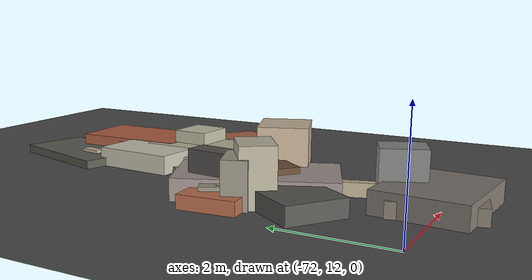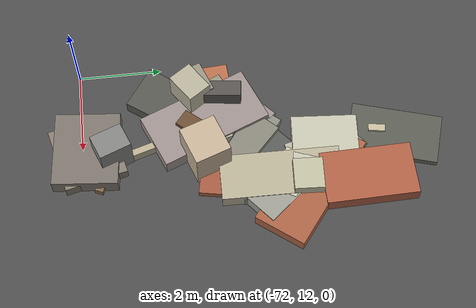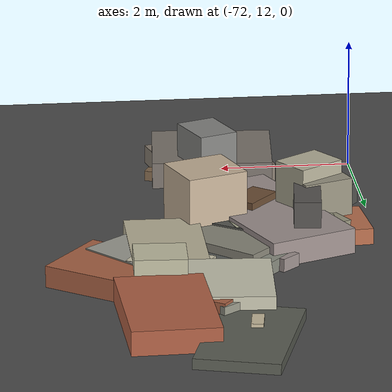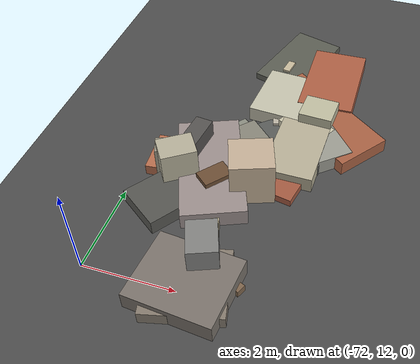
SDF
<sdf version="1.6">
 <world name="navitas_arena">
  <model name="ground_plane">
   <static>true</static>
   <link name="link">
    <collision name="collision">
     <geometry><plane><normal>0 0 1</normal><size>400 400</size></plane></geometry>
     <surface><friction><ode><mu>0.800</mu><mu2>0.800</mu2></ode></friction></surface>
    </collision>
    <visual name="visual">
     <cast_shadows>false</cast_shadows>
     <geometry><plane><normal>0 0 1</normal><size>400 400</size></plane></geometry>
     <material>
      <specular>0.04 0.04 0.04 1</specular>
      <script>
       <uri>file://media/materials/scripts/navitas_asphalt.material</uri>
       <name>Navitas/RealArenaAsphalt</name>
      </script>
     </material>
    </visual>
   </link>
  </model>
  <model name="deb_kolay_23">
   <static>true</static>
   <pose>-69.438 12.434 0.000 0 0 0</pose>
   <link name="link">
    <collision name="col_0">
     <pose>-0.264 0.296 0.466 0.000 0.000 0.378</pose>
     <geometry><box><size>0.619 0.785 0.932</size></box></geometry>
    </collision>
    <visual name="vis_0">
     <pose>-0.264 0.296 0.466 0.000 0.000 0.378</pose>
     <geometry><box><size>0.619 0.785 0.932</size></box></geometry>
     <material>
      <ambient>0.48 0.49 0.47 1</ambient>
      <diffuse>0.52 0.52 0.51 1</diffuse>
      <specular>0.05 0.05 0.045 1</specular>
     </material>
    </visual>
    <collision name="col_1">
     <pose>0.426 -0.012 0.077 0.000 0.000 -0.410</pose>
     <geometry><box><size>0.452 0.203 0.153</size></box></geometry>
    </collision>
    <visual name="vis_1">
     <pose>0.426 -0.012 0.077 0.000 0.000 -0.410</pose>
     <geometry><box><size>0.452 0.203 0.153</size></box></geometry>
     <material>
      <ambient>0.46 0.37 0.28 1</ambient>
      <diffuse>0.50 0.40 0.30 1</diffuse>
      <specular>0.05 0.05 0.045 1</specular>
     </material>
    </visual>
    <collision name="col_2">
     <pose>-0.399 -0.323 0.203 0.000 0.000 -0.088</pose>
     <geometry><box><size>1.848 1.564 0.406</size></box></geometry>
    </collision>
    <visual name="vis_2">
     <pose>-0.399 -0.323 0.203 0.000 0.000 -0.088</pose>
     <geometry><box><size>1.848 1.564 0.406</size></box></geometry>
     <material>
      <ambient>0.45 0.43 0.40 1</ambient>
      <diffuse>0.49 0.46 0.43 1</diffuse>
      <specular>0.05 0.05 0.045 1</specular>
     </material>
    </visual>
    <collision name="col_3">
     <pose>-0.157 0.520 0.126 0.000 0.000 1.872</pose>
     <geometry><box><size>2.032 0.167 0.253</size></box></geometry>
    </collision>
    <visual name="vis_3">
     <pose>-0.157 0.520 0.126 0.000 0.000 1.872</pose>
     <geometry><box><size>2.032 0.167 0.253</size></box></geometry>
     <material>
      <ambient>0.68 0.64 0.53 1</ambient>
      <diffuse>0.74 0.69 0.57 1</diffuse>
      <specular>0.05 0.05 0.045 1</specular>
     </material>
    </visual>
    <collision name="col_4">
     <pose>-0.371 -0.310 0.142 0.000 0.000 1.806</pose>
     <geometry><box><size>1.516 1.621 0.283</size></box></geometry>
    </collision>
    <visual name="vis_4">
     <pose>-0.371 -0.310 0.142 0.000 0.000 1.806</pose>
     <geometry><box><size>1.516 1.621 0.283</size></box></geometry>
     <material>
      <ambient>0.49 0.46 0.40 1</ambient>
      <diffuse>0.53 0.49 0.44 1</diffuse>
      <specular>0.05 0.05 0.045 1</specular>
     </material>
    </visual>
   </link>
  </model>
  <model name="deb_kolay_56">
   <static>true</static>
   <pose>-68.680 16.682 0.000 0 0 0</pose>
   <link name="link">
    <collision name="col_0">
     <pose>0.546 0.234 0.127 0.000 0.000 1.871</pose>
     <geometry><box><size>1.388 0.213 0.255</size></box></geometry>
    </collision>
    <visual name="vis_0">
     <pose>0.546 0.234 0.127 0.000 0.000 1.871</pose>
     <geometry><box><size>1.388 0.213 0.255</size></box></geometry>
     <material>
      <ambient>0.59 0.35 0.25 1</ambient>
      <diffuse>0.64 0.37 0.27 1</diffuse>
      <specular>0.05 0.05 0.045 1</specular>
     </material>
    </visual>
    <collision name="col_1">
     <pose>-0.047 0.199 0.178 0.000 0.000 2.626</pose>
     <geometry><box><size>1.124 0.705 0.356</size></box></geometry>
    </collision>
    <visual name="vis_1">
     <pose>-0.047 0.199 0.178 0.000 0.000 2.626</pose>
     <geometry><box><size>1.124 0.705 0.356</size></box></geometry>
     <material>
      <ambient>0.74 0.72 0.63 1</ambient>
      <diffuse>0.80 0.78 0.68 1</diffuse>
      <specular>0.05 0.05 0.045 1</specular>
     </material>
    </visual>
    <collision name="col_2">
     <pose>0.140 0.172 0.175 0.000 0.000 2.275</pose>
     <geometry><box><size>2.137 0.839 0.350</size></box></geometry>
    </collision>
    <visual name="vis_2">
     <pose>0.140 0.172 0.175 0.000 0.000 2.275</pose>
     <geometry><box><size>2.137 0.839 0.350</size></box></geometry>
     <material>
      <ambient>0.57 0.58 0.53 1</ambient>
      <diffuse>0.62 0.62 0.58 1</diffuse>
      <specular>0.05 0.05 0.045 1</specular>
     </material>
    </visual>
    <collision name="col_3">
     <pose>-0.710 -0.249 0.083 0.000 0.000 0.719</pose>
     <geometry><box><size>2.042 1.165 0.166</size></box></geometry>
    </collision>
    <visual name="vis_3">
     <pose>-0.710 -0.249 0.083 0.000 0.000 0.719</pose>
     <geometry><box><size>2.042 1.165 0.166</size></box></geometry>
     <material>
      <ambient>0.33 0.34 0.32 1</ambient>
      <diffuse>0.35 0.36 0.35 1</diffuse>
      <specular>0.05 0.05 0.045 1</specular>
     </material>
    </visual>
    <collision name="col_4">
     <pose>-0.048 -0.045 0.181 0.000 0.000 1.559</pose>
     <geometry><box><size>2.868 1.129 0.363</size></box></geometry>
    </collision>
    <visual name="vis_4">
     <pose>-0.048 -0.045 0.181 0.000 0.000 1.559</pose>
     <geometry><box><size>2.868 1.129 0.363</size></box></geometry>
     <material>
      <ambient>0.68 0.65 0.55 1</ambient>
      <diffuse>0.73 0.70 0.60 1</diffuse>
      <specular>0.05 0.05 0.045 1</specular>
     </material>
    </visual>
    <collision name="col_5">
     <pose>0.328 0.199 0.149 0.000 0.000 0.360</pose>
     <geometry><box><size>1.561 0.953 0.297</size></box></geometry>
    </collision>
    <visual name="vis_5">
     <pose>0.328 0.199 0.149 0.000 0.000 0.360</pose>
     <geometry><box><size>1.561 0.953 0.297</size></box></geometry>
     <material>
      <ambient>0.52 0.47 0.45 1</ambient>
      <diffuse>0.56 0.50 0.49 1</diffuse>
      <specular>0.05 0.05 0.045 1</specular>
     </material>
    </visual>
    <collision name="col_6">
     <pose>0.453 -0.754 0.145 0.000 0.000 1.510</pose>
     <geometry><box><size>0.419 0.168 0.290</size></box></geometry>
    </collision>
    <visual name="vis_6">
     <pose>0.453 -0.754 0.145 0.000 0.000 1.510</pose>
     <geometry><box><size>0.419 0.168 0.290</size></box></geometry>
     <material>
      <ambient>0.50 0.50 0.48 1</ambient>
      <diffuse>0.54 0.54 0.52 1</diffuse>
      <specular>0.05 0.05 0.045 1</specular>
     </material>
    </visual>
   </link>
  </model>
  <model name="deb_kolay_140">
   <static>true</static>
   <pose>-69.699 18.768 0.000 0 0 0</pose>
   <link name="link">
    <collision name="col_0">
     <pose>0.117 0.736 0.081 0.000 0.000 1.286</pose>
     <geometry><box><size>2.200 1.252 0.161</size></box></geometry>
    </collision>
    <visual name="vis_0">
     <pose>0.117 0.736 0.081 0.000 0.000 1.286</pose>
     <geometry><box><size>2.200 1.252 0.161</size></box></geometry>
     <material>
      <ambient>0.33 0.34 0.30 1</ambient>
      <diffuse>0.36 0.37 0.33 1</diffuse>
      <specular>0.05 0.05 0.045 1</specular>
     </material>
    </visual>
    <collision name="col_1">
     <pose>-0.043 0.330 0.109 0.000 0.000 1.420</pose>
     <geometry><box><size>0.409 0.177 0.217</size></box></geometry>
    </collision>
    <visual name="vis_1">
     <pose>-0.043 0.330 0.109 0.000 0.000 1.420</pose>
     <geometry><box><size>0.409 0.177 0.217</size></box></geometry>
     <material>
      <ambient>0.73 0.68 0.57 1</ambient>
      <diffuse>0.79 0.74 0.62 1</diffuse>
      <specular>0.05 0.05 0.045 1</specular>
     </material>
    </visual>
    <collision name="col_2">
     <pose>0.745 -0.051 0.163 0.000 0.000 -0.127</pose>
     <geometry><box><size>0.249 0.425 0.325</size></box></geometry>
    </collision>
    <visual name="vis_2">
     <pose>0.745 -0.051 0.163 0.000 0.000 -0.127</pose>
     <geometry><box><size>0.249 0.425 0.325</size></box></geometry>
     <material>
      <ambient>0.35 0.31 0.32 1</ambient>
      <diffuse>0.38 0.33 0.35 1</diffuse>
      <specular>0.05 0.05 0.045 1</specular>
     </material>
    </visual>
    <collision name="col_3">
     <pose>0.305 -0.470 0.161 0.000 0.000 1.300</pose>
     <geometry><box><size>0.336 0.344 0.322</size></box></geometry>
    </collision>
    <visual name="vis_3">
     <pose>0.305 -0.470 0.161 0.000 0.000 1.300</pose>
     <geometry><box><size>0.336 0.344 0.322</size></box></geometry>
     <material>
      <ambient>0.72 0.69 0.60 1</ambient>
      <diffuse>0.77 0.75 0.65 1</diffuse>
      <specular>0.05 0.05 0.045 1</specular>
     </material>
    </visual>
    <collision name="col_4">
     <pose>0.340 -0.187 0.143 0.000 0.000 2.240</pose>
     <geometry><box><size>0.244 0.340 0.286</size></box></geometry>
    </collision>
    <visual name="vis_4">
     <pose>0.340 -0.187 0.143 0.000 0.000 2.240</pose>
     <geometry><box><size>0.244 0.340 0.286</size></box></geometry>
     <material>
      <ambient>0.56 0.56 0.50 1</ambient>
      <diffuse>0.60 0.60 0.54 1</diffuse>
      <specular>0.05 0.05 0.045 1</specular>
     </material>
    </visual>
   </link>
  </model>
  <model name="deb_kolay_141">
   <static>true</static>
   <pose>-70.099 14.708 0.000 0 0 0</pose>
   <link name="link">
    <collision name="col_0">
     <pose>-0.395 0.330 0.165 0.000 0.000 3.390</pose>
     <geometry><box><size>1.571 0.800 0.331</size></box></geometry>
    </collision>
    <visual name="vis_0">
     <pose>-0.395 0.330 0.165 0.000 0.000 3.390</pose>
     <geometry><box><size>1.571 0.800 0.331</size></box></geometry>
     <material>
      <ambient>0.65 0.65 0.55 1</ambient>
      <diffuse>0.70 0.70 0.59 1</diffuse>
      <specular>0.05 0.05 0.045 1</specular>
     </material>
    </visual>
    <collision name="col_1">
     <pose>0.657 0.224 0.529 0.000 0.000 1.920</pose>
     <geometry><box><size>0.886 0.955 1.059</size></box></geometry>
    </collision>
    <visual name="vis_1">
     <pose>0.657 0.224 0.529 0.000 0.000 1.920</pose>
     <geometry><box><size>0.886 0.955 1.059</size></box></geometry>
     <material>
      <ambient>0.72 0.65 0.56 1</ambient>
      <diffuse>0.78 0.70 0.60 1</diffuse>
      <specular>0.05 0.05 0.045 1</specular>
     </material>
    </visual>
    <collision name="col_2">
     <pose>-0.084 -0.039 0.249 0.000 0.000 4.016</pose>
     <geometry><box><size>0.662 0.426 0.499</size></box></geometry>
    </collision>
    <visual name="vis_2">
     <pose>-0.084 -0.039 0.249 0.000 0.000 4.016</pose>
     <geometry><box><size>0.662 0.426 0.499</size></box></geometry>
     <material>
      <ambient>0.40 0.29 0.20 1</ambient>
      <diffuse>0.43 0.31 0.21 1</diffuse>
      <specular>0.05 0.05 0.045 1</specular>
     </material>
    </visual>
    <collision name="col_3">
     <pose>0.032 -0.107 0.134 0.000 0.000 3.089</pose>
     <geometry><box><size>0.499 0.284 0.268</size></box></geometry>
    </collision>
    <visual name="vis_3">
     <pose>0.032 -0.107 0.134 0.000 0.000 3.089</pose>
     <geometry><box><size>0.499 0.284 0.268</size></box></geometry>
     <material>
      <ambient>0.40 0.41 0.37 1</ambient>
      <diffuse>0.43 0.44 0.40 1</diffuse>
      <specular>0.05 0.05 0.045 1</specular>
     </material>
    </visual>
    <collision name="col_4">
     <pose>-0.391 0.512 0.138 0.000 0.000 3.169</pose>
     <geometry><box><size>1.601 0.193 0.276</size></box></geometry>
    </collision>
    <visual name="vis_4">
     <pose>-0.391 0.512 0.138 0.000 0.000 3.169</pose>
     <geometry><box><size>1.601 0.193 0.276</size></box></geometry>
     <material>
      <ambient>0.70 0.65 0.55 1</ambient>
      <diffuse>0.76 0.70 0.60 1</diffuse>
      <specular>0.05 0.05 0.045 1</specular>
     </material>
    </visual>
    <collision name="col_5">
     <pose>-0.021 -0.302 0.073 0.000 0.000 3.798</pose>
     <geometry><box><size>1.861 0.229 0.146</size></box></geometry>
    </collision>
    <visual name="vis_5">
     <pose>-0.021 -0.302 0.073 0.000 0.000 3.798</pose>
     <geometry><box><size>1.861 0.229 0.146</size></box></geometry>
     <material>
      <ambient>0.48 0.47 0.43 1</ambient>
      <diffuse>0.51 0.51 0.47 1</diffuse>
      <specular>0.05 0.05 0.045 1</specular>
     </material>
    </visual>
   </link>
  </model>
  <model name="deb_kolay_145">
   <static>true</static>
   <pose>-69.168 18.178 0.000 0 0 0</pose>
   <link name="link">
    <collision name="col_0">
     <pose>-0.058 -0.404 0.181 0.000 0.000 1.502</pose>
     <geometry><box><size>1.578 1.789 0.363</size></box></geometry>
    </collision>
    <visual name="vis_0">
     <pose>-0.058 -0.404 0.181 0.000 0.000 1.502</pose>
     <geometry><box><size>1.578 1.789 0.363</size></box></geometry>
     <material>
      <ambient>0.72 0.72 0.64 1</ambient>
      <diffuse>0.78 0.77 0.69 1</diffuse>
      <specular>0.05 0.05 0.045 1</specular>
     </material>
    </visual>
    <collision name="col_1">
     <pose>0.679 -0.849 0.165 0.000 0.000 2.497</pose>
     <geometry><box><size>3.029 1.300 0.329</size></box></geometry>
    </collision>
    <visual name="vis_1">
     <pose>0.679 -0.849 0.165 0.000 0.000 2.497</pose>
     <geometry><box><size>3.029 1.300 0.329</size></box></geometry>
     <material>
      <ambient>0.62 0.36 0.25 1</ambient>
      <diffuse>0.67 0.39 0.27 1</diffuse>
      <specular>0.05 0.05 0.045 1</specular>
     </material>
    </visual>
    <collision name="col_2">
     <pose>0.635 -0.920 0.302 0.000 0.000 3.089</pose>
     <geometry><box><size>0.779 0.706 0.604</size></box></geometry>
    </collision>
    <visual name="vis_2">
     <pose>0.635 -0.920 0.302 0.000 0.000 3.089</pose>
     <geometry><box><size>0.779 0.706 0.604</size></box></geometry>
     <material>
      <ambient>0.71 0.69 0.59 1</ambient>
      <diffuse>0.76 0.75 0.64 1</diffuse>
      <specular>0.05 0.05 0.045 1</specular>
     </material>
    </visual>
    <collision name="col_3">
     <pose>0.669 0.519 0.185 0.000 0.000 1.596</pose>
     <geometry><box><size>2.197 1.303 0.370</size></box></geometry>
    </collision>
    <visual name="vis_3">
     <pose>0.669 0.519 0.185 0.000 0.000 1.596</pose>
     <geometry><box><size>2.197 1.303 0.370</size></box></geometry>
     <material>
      <ambient>0.64 0.36 0.25 1</ambient>
      <diffuse>0.69 0.38 0.27 1</diffuse>
      <specular>0.05 0.05 0.045 1</specular>
     </material>
    </visual>
   </link>
  </model>
  <model name="deb_kolay_164">
   <static>true</static>
   <pose>-70.696 15.144 0.000 0 0 0</pose>
   <link name="link">
    <collision name="col_0">
     <pose>-0.423 0.059 0.124 0.000 0.000 0.080</pose>
     <geometry><box><size>1.458 1.016 0.248</size></box></geometry>
    </collision>
    <visual name="vis_0">
     <pose>-0.423 0.059 0.124 0.000 0.000 0.080</pose>
     <geometry><box><size>1.458 1.016 0.248</size></box></geometry>
     <material>
      <ambient>0.68 0.41 0.29 1</ambient>
      <diffuse>0.73 0.44 0.31 1</diffuse>
      <specular>0.05 0.05 0.045 1</specular>
     </material>
    </visual>
    <collision name="col_1">
     <pose>0.312 -0.161 0.195 0.000 0.000 1.966</pose>
     <geometry><box><size>2.775 1.392 0.390</size></box></geometry>
    </collision>
    <visual name="vis_1">
     <pose>0.312 -0.161 0.195 0.000 0.000 1.966</pose>
     <geometry><box><size>2.775 1.392 0.390</size></box></geometry>
     <material>
      <ambient>0.58 0.53 0.52 1</ambient>
      <diffuse>0.62 0.57 0.56 1</diffuse>
      <specular>0.05 0.05 0.045 1</specular>
     </material>
    </visual>
    <collision name="col_2">
     <pose>0.810 0.133 0.085 0.000 0.000 -0.187</pose>
     <geometry><box><size>2.948 0.684 0.171</size></box></geometry>
    </collision>
    <visual name="vis_2">
     <pose>0.810 0.133 0.085 0.000 0.000 -0.187</pose>
     <geometry><box><size>2.948 0.684 0.171</size></box></geometry>
     <material>
      <ambient>0.60 0.33 0.24 1</ambient>
      <diffuse>0.65 0.36 0.26 1</diffuse>
      <specular>0.05 0.05 0.045 1</specular>
     </material>
    </visual>
    <collision name="col_3">
     <pose>0.030 -0.589 0.164 0.000 0.000 0.959</pose>
     <geometry><box><size>2.703 1.115 0.328</size></box></geometry>
    </collision>
    <visual name="vis_3">
     <pose>0.030 -0.589 0.164 0.000 0.000 0.959</pose>
     <geometry><box><size>2.703 1.115 0.328</size></box></geometry>
     <material>
      <ambient>0.32 0.32 0.30 1</ambient>
      <diffuse>0.34 0.34 0.32 1</diffuse>
      <specular>0.05 0.05 0.045 1</specular>
     </material>
    </visual>
    <collision name="col_4">
     <pose>0.285 0.385 0.122 0.000 0.000 0.286</pose>
     <geometry><box><size>0.372 0.334 0.244</size></box></geometry>
    </collision>
    <visual name="vis_4">
     <pose>0.285 0.385 0.122 0.000 0.000 0.286</pose>
     <geometry><box><size>0.372 0.334 0.244</size></box></geometry>
     <material>
      <ambient>0.66 0.65 0.58 1</ambient>
      <diffuse>0.71 0.71 0.63 1</diffuse>
      <specular>0.05 0.05 0.045 1</specular>
     </material>
    </visual>
    <collision name="col_5">
     <pose>0.752 -0.301 0.106 0.000 0.000 0.949</pose>
     <geometry><box><size>1.074 0.121 0.213</size></box></geometry>
    </collision>
    <visual name="vis_5">
     <pose>0.752 -0.301 0.106 0.000 0.000 0.949</pose>
     <geometry><box><size>1.074 0.121 0.213</size></box></geometry>
     <material>
      <ambient>0.71 0.66 0.60 1</ambient>
      <diffuse>0.76 0.71 0.65 1</diffuse>
      <specular>0.05 0.05 0.045 1</specular>
     </material>
    </visual>
    <collision name="col_6">
     <pose>-0.629 0.167 0.160 0.000 0.000 0.462</pose>
     <geometry><box><size>0.332 0.442 0.320</size></box></geometry>
    </collision>
    <visual name="vis_6">
     <pose>-0.629 0.167 0.160 0.000 0.000 0.462</pose>
     <geometry><box><size>0.332 0.442 0.320</size></box></geometry>
     <material>
      <ambient>0.54 0.54 0.45 1</ambient>
      <diffuse>0.59 0.58 0.49 1</diffuse>
      <specular>0.05 0.05 0.045 1</specular>
     </material>
    </visual>
   </link>
  </model>
  <model name="deb_kolay_187">
   <static>true</static>
   <pose>-70.014 15.977 0.000 0 0 0</pose>
   <link name="link">
    <collision name="col_0">
     <pose>0.063 -0.440 0.150 0.000 0.000 -0.748</pose>
     <geometry><box><size>1.624 1.757 0.301</size></box></geometry>
    </collision>
    <visual name="vis_0">
     <pose>0.063 -0.440 0.150 0.000 0.000 -0.748</pose>
     <geometry><box><size>1.624 1.757 0.301</size></box></geometry>
     <material>
      <ambient>0.50 0.49 0.44 1</ambient>
      <diffuse>0.54 0.53 0.48 1</diffuse>
      <specular>0.05 0.05 0.045 1</specular>
     </material>
    </visual>
    <collision name="col_1">
     <pose>-0.447 0.521 0.101 0.000 0.000 -0.813</pose>
     <geometry><box><size>0.223 0.355 0.202</size></box></geometry>
    </collision>
    <visual name="vis_1">
     <pose>-0.447 0.521 0.101 0.000 0.000 -0.813</pose>
     <geometry><box><size>0.223 0.355 0.202</size></box></geometry>
     <material>
      <ambient>0.57 0.53 0.51 1</ambient>
      <diffuse>0.62 0.57 0.56 1</diffuse>
      <specular>0.05 0.05 0.045 1</specular>
     </material>
    </visual>
    <collision name="col_2">
     <pose>0.580 1.093 0.118 0.000 0.000 0.264</pose>
     <geometry><box><size>0.291 0.455 0.235</size></box></geometry>
    </collision>
    <visual name="vis_2">
     <pose>0.580 1.093 0.118 0.000 0.000 0.264</pose>
     <geometry><box><size>0.291 0.455 0.235</size></box></geometry>
     <material>
      <ambient>0.68 0.66 0.60 1</ambient>
      <diffuse>0.74 0.71 0.65 1</diffuse>
      <specular>0.05 0.05 0.045 1</specular>
     </material>
    </visual>
    <collision name="col_3">
     <pose>-0.002 -0.119 0.101 0.000 0.000 -0.679</pose>
     <geometry><box><size>1.500 1.265 0.202</size></box></geometry>
    </collision>
    <visual name="vis_3">
     <pose>-0.002 -0.119 0.101 0.000 0.000 -0.679</pose>
     <geometry><box><size>1.500 1.265 0.202</size></box></geometry>
     <material>
      <ambient>0.51 0.52 0.47 1</ambient>
      <diffuse>0.55 0.56 0.51 1</diffuse>
      <specular>0.05 0.05 0.045 1</specular>
     </material>
    </visual>
   </link>
  </model>
  <model name="deb_kolay_206">
   <static>true</static>
   <pose>-70.802 14.846 0.000 0 0 0</pose>
   <link name="link">
    <collision name="col_0">
     <pose>-0.225 -0.141 0.516 0.000 0.000 2.176</pose>
     <geometry><box><size>0.609 0.782 1.032</size></box></geometry>
    </collision>
    <visual name="vis_0">
     <pose>-0.225 -0.141 0.516 0.000 0.000 2.176</pose>
     <geometry><box><size>0.609 0.782 1.032</size></box></geometry>
     <material>
      <ambient>0.67 0.65 0.56 1</ambient>
      <diffuse>0.72 0.70 0.61 1</diffuse>
      <specular>0.05 0.05 0.045 1</specular>
     </material>
    </visual>
    <collision name="col_1">
     <pose>-0.402 0.078 0.410 0.000 0.000 0.363</pose>
     <geometry><box><size>0.790 0.431 0.820</size></box></geometry>
    </collision>
    <visual name="vis_1">
     <pose>-0.402 0.078 0.410 0.000 0.000 0.363</pose>
     <geometry><box><size>0.790 0.431 0.820</size></box></geometry>
     <material>
      <ambient>0.56 0.53 0.47 1</ambient>
      <diffuse>0.60 0.58 0.51 1</diffuse>
      <specular>0.05 0.05 0.045 1</specular>
     </material>
    </visual>
    <collision name="col_2">
     <pose>0.299 0.395 0.129 0.000 0.000 0.670</pose>
     <geometry><box><size>0.492 0.243 0.259</size></box></geometry>
    </collision>
    <visual name="vis_2">
     <pose>0.299 0.395 0.129 0.000 0.000 0.670</pose>
     <geometry><box><size>0.492 0.243 0.259</size></box></geometry>
     <material>
      <ambient>0.55 0.54 0.50 1</ambient>
      <diffuse>0.60 0.59 0.54 1</diffuse>
      <specular>0.05 0.05 0.045 1</specular>
     </material>
    </visual>
    <collision name="col_3">
     <pose>-0.121 0.509 0.396 0.000 0.000 1.457</pose>
     <geometry><box><size>1.128 0.404 0.792</size></box></geometry>
    </collision>
    <visual name="vis_3">
     <pose>-0.121 0.509 0.396 0.000 0.000 1.457</pose>
     <geometry><box><size>1.128 0.404 0.792</size></box></geometry>
     <material>
      <ambient>0.32 0.31 0.29 1</ambient>
      <diffuse>0.34 0.33 0.32 1</diffuse>
      <specular>0.05 0.05 0.045 1</specular>
     </material>
    </visual>
   </link>
  </model>
 </world>
</sdf>
